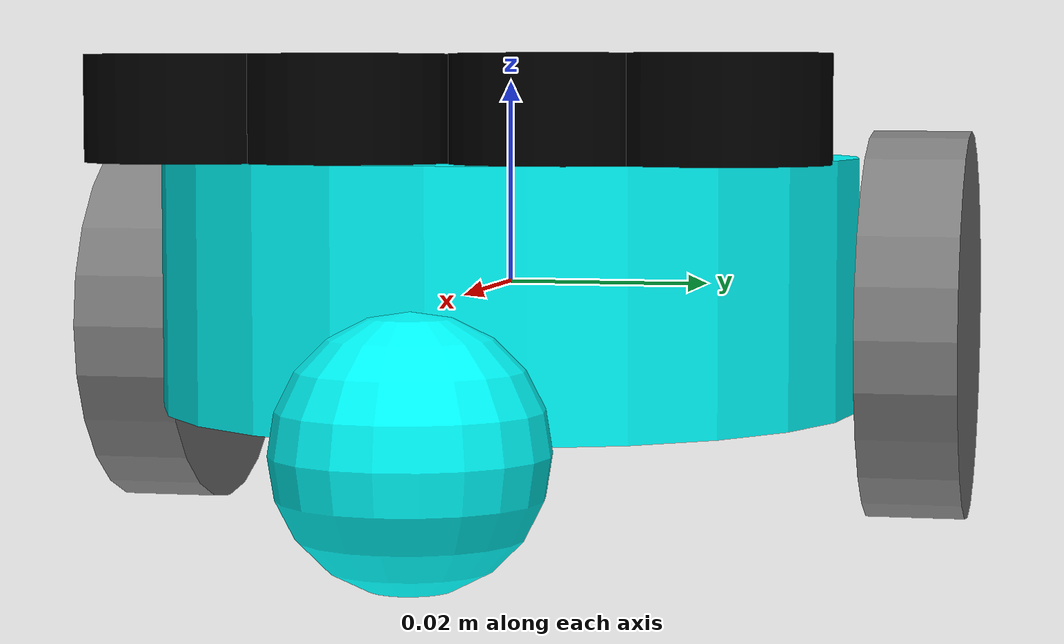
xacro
<?xml version="1.0"?>
<robot name="sam_bot" xmlns:xacro="http://ros.org/wiki/xacro">
    <xacro:include filename="$(find micromouse_description)/urdf/macros.xacro" />
    <!-- Define robot constants -->
    <xacro:property name="base_width" value="0.035" />
    <xacro:property name="base_length" value="0.05" />
    <xacro:property name="base_height" value="0.025" />

    <xacro:property name="wheel_radius" value="0.02" />
    <xacro:property name="wheel_width" value="0.01" />
    <xacro:property name="wheel_ygap" value="${base_width/2 + wheel_width/2}" />
    <xacro:property name="wheel_zoff" value="0.005" />
    <xacro:property name="wheel_xoff" value="0.015" />

    <xacro:property name="caster_xoff" value="0.04" />

    <!-- Robot Base -->
    <link name="base_link">
        <visual>
            <geometry>
                <cylinder radius="${base_width}" length="${base_height}" />
            </geometry>
            <material name="Cyan">
                <color rgba="0 1.0 1.0 1.0" />
            </material>
        </visual>

        <collision>
            <geometry>
                <cylinder radius="${base_width}" length="${base_height}" />
            </geometry>
        </collision>

        <xacro:box_inertia m="15" w="${base_width}" d="${base_length}" h="${base_height}" />
    </link>
    <gazebo reference="base_link">
        <material>Gazebo/Turquoise</material>
    </gazebo>

    <!-- Robot Footprint -->
    <link name="base_footprint">
        <xacro:box_inertia m="0" w="0" d="0" h="0" />
    </link>

    <joint name="base_joint" type="fixed">
        <parent link="base_link" />
        <child link="base_footprint" />
        <origin xyz="0.0 0.0 ${-(wheel_radius+wheel_zoff)}" rpy="0 0 0" />
    </joint>

    <!-- Wheels -->
    <xacro:macro name="wheel" params="prefix x_reflect y_reflect">
        <link name="${prefix}_link">
            <visual>
                <origin xyz="0 0 0" rpy="${pi/2} 0 0" />
                <geometry>
                    <cylinder radius="${wheel_radius}" length="${wheel_width}" />
                </geometry>
                <material name="Gray">
                    <color rgba="0.5 0.5 0.5 1.0" />
                </material>
            </visual>

            <collision>
                <origin xyz="0 0 0" rpy="${pi/2} 0 0" />
                <geometry>
                    <cylinder radius="${wheel_radius}" length="${wheel_width}" />
                </geometry>
            </collision>

            <xacro:cylinder_inertia m="0.5" r="${wheel_radius}" h="${wheel_width}" />
        </link>

        <joint name="${prefix}_joint" type="continuous">
            <parent link="base_link" />
            <child link="${prefix}_link" />
            <origin xyz="${x_reflect*wheel_xoff} ${y_reflect*(base_width/2+wheel_ygap)} ${-wheel_zoff}" rpy="0 0 0" />
            <axis xyz="0 1 0" />
        </joint>
    </xacro:macro>

    <xacro:wheel prefix="drivewhl_l" x_reflect="-1" y_reflect="1" />
    <xacro:wheel prefix="drivewhl_r" x_reflect="-1" y_reflect="-1" />

    <link name="front_caster">
        <visual>
            <geometry>
                <sphere radius="${(wheel_radius+wheel_zoff-(base_height/2))}" />
            </geometry>
            <material name="Cyan">
                <color rgba="0 1.0 1.0 1.0" />
            </material>
        </visual>

        <collision>
            <origin xyz="0 0 0" rpy="0 0 0" />
            <geometry>
                <sphere radius="${(wheel_radius+wheel_zoff-(base_height/2))}" />
            </geometry>
        </collision>

        <xacro:sphere_inertia m="0.5" r="${(wheel_radius+wheel_zoff-(base_height/2))}" />
    </link>

    <joint name="caster_joint" type="fixed">
        <parent link="base_link" />
        <child link="front_caster" />
        <origin xyz="${caster_xoff} 0.0 ${-(base_height/2)}" rpy="0 0 0" />
    </joint>
    <gazebo reference="front_caster">
        <material>Gazebo/Black</material>
    </gazebo>

    <xacro:include filename="$(find micromouse_description)/urdf/imu.xacro" />
    <xacro:include filename="$(find micromouse_description)/urdf/diff_drive.xacro" />

    <!-- Range Sensors -->
    <xacro:include filename="$(find micromouse_description)/urdf/range_sensor.xacro" />
    <xacro:range_sensor name="range_sensor_right" parent="base_link">
        <origin xyz="0.025 0.025 ${base_height/2 + 0.005}" rpy="0 0  1.2" />
    </xacro:range_sensor>

    <xacro:range_sensor name="range_sensor_left" parent="base_link">
        <origin xyz="0.025 -0.025 ${base_height/2 + 0.005}" rpy="0 0 -1.2" />
    </xacro:range_sensor>

    <xacro:range_sensor name="range_sensor_front_left" parent="base_link">
        <origin xyz="0.025 -0.01 ${base_height/2 + 0.005}" rpy="0 0 0" />
    </xacro:range_sensor>

    <xacro:range_sensor name="range_sensor_front_right" parent="base_link">
        <origin xyz="0.025 0.01 ${base_height/2 + 0.005}" rpy="0 0 0" />
    </xacro:range_sensor>
</robot>

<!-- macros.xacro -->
<robot name="micromouse" xmlns:xacro="http://ros.org/wiki/xacro">
<!-- Define intertial property macros  -->
<xacro:macro name="box_inertia" params="m w h d">
    <inertial>
        <origin xyz="0 0 0" rpy="${pi/2} 0 ${pi/2}" />
        <mass value="${m}" />
        <inertia ixx="${(m/12) * (h*h + d*d)}" ixy="0.0" ixz="0.0" iyy="${(m/12) * (w*w + d*d)}" iyz="0.0" izz="${(m/12) * (w*w + h*h)}" />
    </inertial>
</xacro:macro>
<xacro:macro name="cylinder_inertia" params="m r h">
    <inertial>
        <origin xyz="0 0 0" rpy="${pi/2} 0 0" />
        <mass value="${m}" />
        <inertia ixx="${(m/12) * (3*r*r + h*h)}" ixy="0" ixz="0" iyy="${(m/12) * (3*r*r + h*h)}" iyz="0" izz="${(m/2) * (r*r)}" />
    </inertial>
</xacro:macro>
<xacro:macro name="sphere_inertia" params="m r">
    <inertial>
        <mass value="${m}" />
        <inertia ixx="${(2/5) * m * (r*r)}" ixy="0.0" ixz="0.0" iyy="${(2/5) * m * (r*r)}" iyz="0.0" izz="${(2/5) * m * (r*r)}" />
    </inertial>
</xacro:macro>
</robot>

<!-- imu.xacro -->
<robot name="micromouse" xmlns:xacro="http://ros.org/wiki/xacro">
<link name="imu_link">
    <visual>
        <geometry>
            <box size="0.01 0.01 0.01" />
        </geometry>
    </visual>

    <collision>
        <geometry>
            <box size="0.01 0.01 0.01" />
        </geometry>
    </collision>

    <xacro:box_inertia m="0.1" w="0.1" d="0.1" h="0.1" />
</link>
<joint name="imu_joint" type="fixed">
    <parent link="base_link" />
    <child link="imu_link" />
    <origin xyz="0 0 0.01" />
</joint>
<gazebo reference="imu_link">
    <material>Gazebo/Black</material>
    <sensor name="imu_sensor" type="imu">
        <plugin filename="libgazebo_ros_imu_sensor.so" name="imu_plugin">
            <ros>
                <namespace>/micromouse</namespace>
                <remapping>~/out:=imu</remapping>
            </ros>
            <initial_orientation_as_reference>false</initial_orientation_as_reference>
        </plugin>
        <always_on>true</always_on>
        <update_rate>100</update_rate>
        <visualize>true</visualize>
        <imu>
            <angular_velocity>
                <x>
                    <noise type="gaussian">
                        <mean>0.0</mean>
                        <stddev>2e-4</stddev>
                        <bias_mean>0.0000075</bias_mean>
                        <bias_stddev>0.0000008</bias_stddev>
                    </noise>
                </x>
                <y>
                    <noise type="gaussian">
                        <mean>0.0</mean>
                        <stddev>2e-4</stddev>
                        <bias_mean>0.0000075</bias_mean>
                        <bias_stddev>0.0000008</bias_stddev>
                    </noise>
                </y>
                <z>
                    <noise type="gaussian">
                        <mean>0.0</mean>
                        <stddev>2e-4</stddev>
                        <bias_mean>0.0000075</bias_mean>
                        <bias_stddev>0.0000008</bias_stddev>
                    </noise>
                </z>
            </angular_velocity>
            <linear_acceleration>
                <x>
                    <noise type="gaussian">
                        <mean>0.0</mean>
                        <stddev>1.7e-2</stddev>
                        <bias_mean>0.1</bias_mean>
                        <bias_stddev>0.001</bias_stddev>
                    </noise>
                </x>
                <y>
                    <noise type="gaussian">
                        <mean>0.0</mean>
                        <stddev>1.7e-2</stddev>
                        <bias_mean>0.1</bias_mean>
                        <bias_stddev>0.001</bias_stddev>
                    </noise>
                </y>
                <z>
                    <noise type="gaussian">
                        <mean>0.0</mean>
                        <stddev>1.7e-2</stddev>
                        <bias_mean>0.1</bias_mean>
                        <bias_stddev>0.001</bias_stddev>
                    </noise>
                </z>
            </linear_acceleration>
        </imu>
    </sensor>
</gazebo>
</robot>

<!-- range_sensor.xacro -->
<robot name="micromouse" xmlns:xacro="http://ros.org/wiki/xacro">
    <xacro:macro name="range_sensor" params="*origin name parent">
        <link name="${name}_link">
            <visual>
                <origin rpy="0 0 0" xyz="0 0 0" />
                <geometry>
                    <cylinder length="0.01" radius="0.01" />
                </geometry>
                <material name="Black">
                    <color rgba="0.0 0.0 0.0 1.0" />
                </material>
            </visual>
        </link>

        <joint name="${name}_joint" type="fixed">
            <child link="${name}_link" />
            <parent link="${parent}" />
            <axis xyz="0 0 0" />
            <xacro:insert_block name="origin" />
        </joint>

        <gazebo reference="${name}_link">
            <material>Gazebo/Black</material>
            <sensor name="${name}" type="ray">
                <ray>
                    <scan>

                        <horizontal>
                            <samples>10</samples>
                            <resolution>1</resolution>
                            <min_angle>-0.05</min_angle>
                            <max_angle>0.05</max_angle>
                        </horizontal>
                        <vertical>
                            <samples>10</samples>
                            <resolution>1</resolution>
                            <min_angle>-0.05</min_angle>
                            <max_angle>0.05</max_angle>
                        </vertical>
                    </scan>
                    <range>
                        <min>0.01</min>
                        <max>0.5</max>
                        <resolution>0.01</resolution>
                    </range>
                    <noise>
                        <type>gaussian</type>
                        <mean>0.0</mean>
                        <stddev>0.01</stddev>
                    </noise>
                </ray>
                <always_on>true</always_on>
                <update_rate>10.0</update_rate>

                <plugin filename="libgazebo_ros_ray_sensor.so" name="${name}">
                    <radiation_type>infrared</radiation_type>
                    <ros remapping="~/out:=${name}">
                        <namespace>/micromouse</namespace>
                    </ros>
                    <output_type>sensor_msgs/Range</output_type>
                </plugin>
                <visualize>true</visualize>
            </sensor>
        </gazebo>

    </xacro:macro>
</robot>
